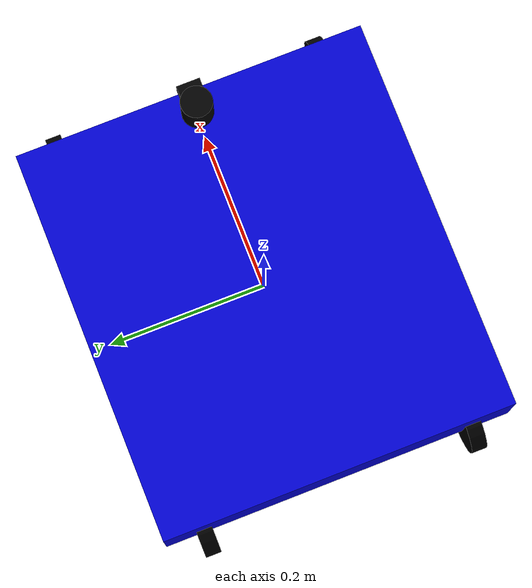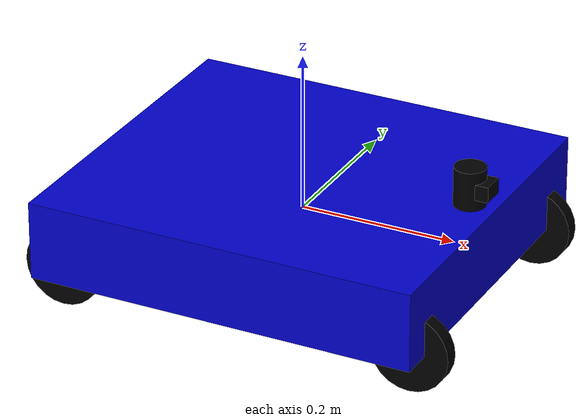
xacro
<?xml version="1.0"?>
<robot name="challenge_robot" xmlns:xacro="http://www.ros.org/wiki/xacro"
       xmlns:xsi="http://www.w3.org/2001/XMLSchema-instance"
       xsi:noNamespaceSchemaLocation="http://download.ros.org/schema/urdf/urdf.xsd">

  <!-- 1. 定义常量  -->
  <xacro:property name="base_width" value="0.45" />     <!-- 宽度 45cm -->
  <xacro:property name="base_length" value="0.50" />    <!-- 长度 50cm -->
  <xacro:property name="base_height" value="0.10" />    <!-- 高度 10cm -->
  <xacro:property name="wheel_radius" value="0.05" />   <!-- 轮子半径 5cm -->
  <xacro:property name="wheel_width" value="0.02" />    <!-- 轮子宽度 2cm -->
  <xacro:property name="wheel_ygap" value="0.05" />     <!-- 轮子离侧面的距离 -->

  <!-- 2. 材质定义 -->
  <material name="blue">
    <color rgba="0 0 0.8 1"/>
  </material>
  <material name="black">
    <color rgba="0 0 0 1"/>
  </material>

  <!-- 3. 底盘链接 (Base Link) -->
  <link name="base_link">
    <visual>
      <geometry>
        <box size="${base_length} ${base_width} ${base_height}"/>
      </geometry>
      <material name="blue"/>
      <origin rpy="0 0 0" xyz="0 0 0"/>
    </visual>
    <collision>
      <geometry>
        <box size="${base_length} ${base_width} ${base_height}"/>
      </geometry>
      <origin rpy="0 0 0" xyz="0 0 0"/>
    </collision>
    <!-- 手动计算的惯性矩阵 (长方体) -->
    <inertial>
      <mass value="5.0" />
      <inertia
        ixx="${(1/12)*5.0*(base_width*base_width + base_height*base_height)}"
        ixy="0.0"
        ixz="0.0"
        iyy="${(1/12)*5.0*(base_length*base_length + base_height*base_height)}"
        iyz="0.0"
        izz="${(1/12)*5.0*(base_length*base_length + base_width*base_width)}" />
    </inertial>
  </link>

  <!-- 4. 激光雷达 (Lidar) - 放在底盘前方中心 -->
  <link name="laser_link">
    <visual>
      <geometry>
        <cylinder radius="0.02" length="0.05"/>
      </geometry>
      <material name="black"/>
    </visual>
    <collision>
      <geometry>
        <cylinder radius="0.02" length="0.05"/>
      </geometry>
    </collision>
    <!-- 简化的惯性矩阵 (小质量物体) -->
    <inertial>
      <mass value="0.1" />
      <inertia ixx="0.0001" ixy="0.0" ixz="0.0" iyy="0.0001" iyz="0.0" izz="0.0001" />
    </inertial>
  </link>

  <joint name="laser_joint" type="fixed">
    <parent link="base_link"/>
    <child link="laser_link"/>
    <origin xyz="0.22 0 0.08" rpy="0 0 0"/> <!-- 距离前端3cm，高度8cm -->
  </joint>

  <!-- 激光雷达 Gazebo 插件 - 发布 /scan 话题 -->
  <gazebo reference="laser_link">
    <sensor type="ray" name="laser_sensor">
      <pose>0 0 0 0 0 0</pose>
      <visualize>true</visualize>
      <update_rate>10</update_rate>
      <ray>
        <scan>
          <horizontal>
            <samples>360</samples>
            <resolution>1.0</resolution>
            <min_angle>0</min_angle>
            <max_angle>6.28319</max_angle>
          </horizontal>
          <vertical>
            <samples>1</samples>
            <resolution>1.0</resolution>
            <min_angle>0</min_angle>
            <max_angle>0</max_angle>
          </vertical>
        </scan>
        <range>
          <min>0.1</min>
          <max>12.0</max>
          <resolution>0.01</resolution>
        </range>
        <noise>
          <type>gaussian</type>
          <mean>0.0</mean>
          <stddev>0.01</stddev>
        </noise>
      </ray>
      <plugin name="laser_plugin" filename="libgazebo_ros_laser.so">
        <topicName>/scan</topicName>
        <frameName>laser_link</frameName>
      </plugin>
    </sensor>
  </gazebo>

  <!-- 5. 轮子定义宏 (Macro) -->
  <xacro:macro name="wheel" params="prefix x y">
    <link name="${prefix}_wheel">
      <visual>
        <geometry>
          <cylinder radius="${wheel_radius}" length="${wheel_width}"/>
        </geometry>
        <material name="black"/>
        <origin rpy="1.5708 0 0" xyz="0 0 0"/> <!-- 旋转90度 -->
      </visual>
      <collision>
        <geometry>
          <cylinder radius="${wheel_radius}" length="${wheel_width}"/>
        </geometry>
        <origin rpy="1.5708 0 0" xyz="0 0 0"/>
      </collision>
      <inertial>
        <mass value="0.5" />
        <inertia ixx="0.001" ixy="0.0" ixz="0.0" iyy="0.001" iyz="0.0" izz="0.001" />
      </inertial>
    </link>

    <joint name="${prefix}_wheel_joint" type="continuous">
      <parent link="base_link"/>
      <child link="${prefix}_wheel"/>
      <origin xyz="${x} ${y} ${-base_height/2}" rpy="0 0 0"/>
      <axis xyz="0 1 0"/>
    </joint>
  </xacro:macro>

  <!-- 6. 实例化四个轮子 -->
  <xacro:wheel prefix="left_front" x="${base_length/2 - wheel_width}" y="${base_width/2 - wheel_ygap}"/>
  <xacro:wheel prefix="right_front" x="${base_length/2 - wheel_width}" y="${-base_width/2 + wheel_ygap}"/>
  <xacro:wheel prefix="left_back" x="${-base_length/2 + wheel_width}" y="${base_width/2 - wheel_ygap}"/>
  <xacro:wheel prefix="right_back" x="${-base_length/2 + wheel_width}" y="${-base_width/2 + wheel_ygap}"/>

  <!-- 7. Gazebo 物理属性 -->
  <gazebo reference="base_link">
    <mu1 value="100.0"/>
    <mu2 value="100.0"/>
    <kp value="10000000.0"/>
    <kd value="10000000.0"/>
    <material>Gazebo/Blue</material>
  </gazebo>

  <!-- 为轮子添加摩擦力 -->
  <xacro:macro name="wheel_gazebo" params="prefix">
    <gazebo reference="${prefix}_wheel">
      <mu1 value="1.0"/>
      <mu2 value="1.0"/>
      <fdir1 value="1 0 0"/>
      <slip1 value="0.0"/>
      <slip2 value="0.0"/>
    </gazebo>
  </xacro:macro>

  <xacro:wheel_gazebo prefix="left_front"/>
  <xacro:wheel_gazebo prefix="right_front"/>
  <xacro:wheel_gazebo prefix="left_back"/>
  <xacro:wheel_gazebo prefix="right_back"/>

  <!-- 使用 libgazebo_ros_diff_drive.so ） -->
  <gazebo>
    <plugin name="differential_drive_controller" filename="libgazebo_ros_diff_drive.so">
      <alwaysOn>true</alwaysOn>
      <updateRate>50.0</updateRate>

      <!-- 左右轮关节（支持多轮同侧） -->
      <leftJoint>left_front_wheel_joint</leftJoint>
      <leftJoint>left_back_wheel_joint</leftJoint>
      <rightJoint>right_front_wheel_joint</rightJoint>
      <rightJoint>right_back_wheel_joint</rightJoint>

      <!-- 物理参数 -->
      <wheelSeparation>${base_width - 2 * wheel_ygap}</wheelSeparation>
      <wheelDiameter>${2 * wheel_radius}</wheelDiameter>

      <!-- ROS 接口 -->
      <commandTopic>/cmd_vel</commandTopic>
      <odometryTopic>/odom</odometryTopic>
      <odometryFrame>odom</odometryFrame>
      <robotBaseFrame>base_link</robotBaseFrame>

      <!-- 发布 odom -> base_link 的 TF -->
      <publishOdomTF>true</publishOdomTF>
    </plugin>
  </gazebo>

  <!-- 8. 前向摄像头 (用于视觉识别) -->
<link name="camera_link">
  <visual>
    <geometry>
      <box size="0.02 0.03 0.02"/>
    </geometry>
    <material name="black"/>
  </visual>
  <collision>
    <geometry>
      <box size="0.02 0.03 0.02"/>
    </geometry>
  </collision>
  <inertial>
    <mass value="0.05"/>
    <inertia ixx="1e-6" ixy="0" ixz="0" iyy="1e-6" iyz="0" izz="1e-6"/>
  </inertial>
</link>

<joint name="camera_joint" type="fixed">
  <parent link="base_link"/>
  <child link="camera_link"/>
  <origin xyz="0.24 0 0.08" rpy="0 0 0"/> <!-- 略高于激光雷达 -->
</joint>

<!-- Gazebo 摄像头插件 -->
<gazebo reference="camera_link">
  <sensor type="camera" name="front_camera">
    <update_rate>30.0</update_rate>
    <camera>
      <horizontal_fov>1.047</horizontal_fov>
      <image>
	<width>640</width>
	<height>480</height>
	<format>R8G8B8</format>
      </image>
      <clip>
	<near>0.1</near>
	<far>10.0</far>
      </clip>
    </camera>
    <plugin name="camera_controller" filename="libgazebo_ros_camera.so">
      <alwaysOn>true</alwaysOn>
      <updateRate>30.0</updateRate>
      <cameraName>front_camera</cameraName>
      <imageTopicName>/camera/image_raw</imageTopicName>
      <cameraInfoTopicName>/camera/camera_info</cameraInfoTopicName>
      <frameName>camera_link</frameName>
      <hackBaseline>0.07</hackBaseline>
    </plugin>
  </sensor>
</gazebo>

</robot>
